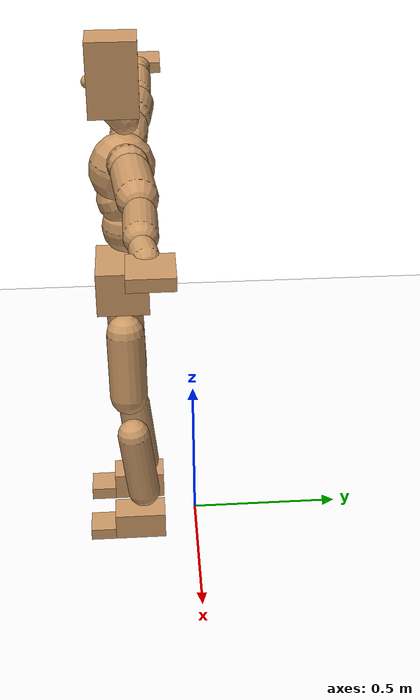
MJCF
<mujoco model="humanoid">
  <option integrator="implicitfast" />

  <visual>
    <global offwidth="1280" offheight="960" />
    <headlight active="1" ambient="0.34 0.34 0.34" diffuse="0.5 0.5 0.5" />
  </visual>

  <default>
    <joint damping="2" stiffness="2" armature="0.01" limited="true" solimplimit="0 .99 .01" />
    <geom condim="1" friction="0.7 0.005 0.0001" solimp=".99 .99 .003" solref="0.015 1" margin="0.001" rgba="0.8 0.6 .4 1" />
    <default class="smplcontact">
      <geom condim="3" friction="1. 0.005 0.0001" solref="0.015 1" solimp="0.98 0.98 0.001" priority="1" />
    </default>
    <default class="stiff_medium">
      <joint stiffness="10" />
    </default>
    <default class="stiff_medium_higher">
      <joint stiffness="50" />
    </default>
    <default class="stiff_high">
      <joint stiffness="100" />
    </default>
  </default>

  <asset>
    <texture type="skybox" builtin="gradient" rgb1="0.99 0.99 0.99" rgb2="0.608 0.828 0.892" width="100" />
    <texture builtin="flat" height="1278" mark="cross" markrgb="1 1 1" name="texgeom" random="0.01" rgb1="0.8 0.6 0.4" rgb2="0.8 0.6 0.4" type="cube" width="127" />
    <texture name="texplane" type="2d" builtin="checker" markrgb="1 1 1" rgb1="0.756 0.772 0.76" rgb2="0.6 0.6 0.6" width="100" height="100" />
    <material name="MatPlane" reflectance="0.5" texture="texplane" texrepeat="1 1" texuniform="true" />
    <material name="geom" texture="texgeom" texuniform="true" />
  </asset>

  <worldbody>
    <light name="tracking_light" pos="0 0 7" dir="0 0 -1" directional="true" cutoff="100" exponent="1" diffuse="1 1 1" specular="0.1 0.1 0.1" mode="trackcom" />
    <camera name="back" pos="0 3 2.4" xyaxes="-1 0 0 0 -1 2" mode="trackcom" />
    <camera name="side" pos="-3 0 2.4" xyaxes="0 -1 0 1 0 2" mode="trackcom" />
    <camera name="front_side" pos="-2.8 -2.8 0.8" xyaxes="0.5 -0.5 0 0.1 0.1 1" mode="trackcom" />
    <geom condim="3" name="floor" pos="0 0 0" rgba="1 1 1 1" size="100 100 .2" type="plane" material="MatPlane" />
    <body name="Pelvis" pos="-0.0018 -0.2233 0.9367" euler="90 0 0">
      <site name="Pelvis" size="0.01" />
      <freejoint name="Pelvis" />
      <geom type="box" pos="-0.0000 -0.0121 -0.0055" size="0.1069 0.0722 0.083" quat="1.0000 0.0000 0.0000 0.0000" density="3165.830099" name="Pelvis" />
      <body name="L_Hip" pos="0.0695 -0.0914 -0.0068">
        <joint name="L_Hip_x" type="hinge" pos="0 0 0" axis="1 0 0" stiffness="10.0" range="-160.0 22.92" class="stiff_medium" damping="15.0" armature="0.01"/>
        <joint name="L_Hip_y" type="hinge" pos="0 0 0" axis="0 1 0" stiffness="10.0" range="-70.0 70.0" class="stiff_medium" damping="10.000000000000002" armature="0.010000000000000005"/>
        <joint name="L_Hip_z" type="hinge" pos="0 0 0" axis="0 0 1" stiffness="10.0" range="-28.65 90.0" class="stiff_medium" damping="9.999999999999998" armature="0.009999999999999998"/>
        <geom type="capsule" density="2040.816327" fromto="0.0069 -0.075 -0.0009 0.0274 -0.3002 -0.0036" size="0.0615" name="L_Hip" />
        <body name="L_Knee" pos="0.0343 -0.3752 -0.0045">
          <joint name="L_Knee_x" type="hinge" pos="0 0 0" axis="1 0 0" range="-5.16 171.89" damping="8.000000000000005" armature="0.010000000000000014" stiffness="2.0"/>
          <joint name="L_Knee_y" type="hinge" pos="0 0 0" axis="0 1 0" range="-4.58 6.88" damping="8.000000000000002" armature="0.010000000000000007" stiffness="2.0"/>
          <joint name="L_Knee_z" type="hinge" pos="0 0 0" axis="0 0 1" range="-6.88 4.58" damping="8.000000000000002" armature="0.010000000000000005" stiffness="2.0"/>
          <geom type="capsule" density="1234.567901" fromto="-0.0027 -0.0796 -0.0087 -0.0109 -0.3184 -0.035" size="0.0541" name="L_Knee" />
          <body name="L_Ankle" pos="-0.0136 -0.398 -0.0437">
            <joint name="L_Ankle_x" type="hinge" pos="0 0 0" axis="1 0 0" range="-45.84 45.84" class="stiff_medium" damping="6.0000000000000675" armature="0.010000000000000227" stiffness="10.0"/>
            <joint name="L_Ankle_y" type="hinge" pos="0 0 0" axis="0 1 0" range="-74.48 22.92" class="stiff_medium" damping="3.000000000000001" armature="0.010000000000000005" stiffness="10.0"/>
            <joint name="L_Ankle_z" type="hinge" pos="0 0 0" axis="0 0 1" range="-4.58 4.58" class="stiff_medium" damping="6.000000000000014" armature="0.01000000000000005" stiffness="10.0"/>
            <geom type="box" pos="0.0233 -0.0239 0.0242" size="0.0483 0.0464 0.085" quat="1.0000 0.0000 0.0000 0.0000" density="449.071558" name="L_Ankle" class="smplcontact" />
            <body name="L_Toe" pos="0.0264 -0.0558 0.1193">
              <joint name="L_Toe_x" type="hinge" pos="0 0 0" axis="1 0 0" range="-91.67 22.92" armature="0.009999999999999572" damping="1.9999999999999571" stiffness="2.0"/>
              <joint name="L_Toe_y" type="hinge" pos="0 0 0" axis="0 1 0" range="-4.58 4.58" armature="0.009999999999999976" damping="1.9999999999999976" stiffness="2.0"/>
              <joint name="L_Toe_z" type="hinge" pos="0 0 0" axis="0 0 1" range="-4.58 4.58" armature="0.010000000000000082" damping="2.000000000000008" stiffness="2.0"/>
              <geom type="box" pos="-0.003 0.0055 0.0248" size="0.0478 0.02 0.0496" quat="1.0000 0.0000 0.0000 0.0000" density="423.206892" name="L_Toe" class="smplcontact" />
            </body>
          </body>
        </body>
      </body>
      <body name="R_Hip" pos="-0.0677 -0.0905 -0.0043">
        <joint name="R_Hip_x" type="hinge" pos="0 0 0" axis="1 0 0" stiffness="10.0" range="-160.0 22.92" class="stiff_medium" damping="15.0" armature="0.01"/>
        <joint name="R_Hip_y" type="hinge" pos="0 0 0" axis="0 1 0" stiffness="10.0" range="-70.0 70.0" class="stiff_medium" damping="10.000000000000002" armature="0.010000000000000005"/>
        <joint name="R_Hip_z" type="hinge" pos="0 0 0" axis="0 0 1" stiffness="10.0" range="-90.0 28.65" class="stiff_medium" damping="9.999999999999998" armature="0.009999999999999998"/>
        <geom type="capsule" density="2040.816327" fromto="-0.0077 -0.0765 -0.0018 -0.0306 -0.3061 -0.0071" size="0.0606" name="R_Hip" />
        <body name="R_Knee" pos="-0.0383 -0.3826 -0.0089">
          <joint name="R_Knee_x" type="hinge" pos="0 0 0" axis="1 0 0" range="-5.16 171.89" damping="8.000000000000005" armature="0.010000000000000014" stiffness="2.0"/>
          <joint name="R_Knee_y" type="hinge" pos="0 0 0" axis="0 1 0" range="-6.88 4.58" damping="8.000000000000002" armature="0.010000000000000007" stiffness="2.0"/>
          <joint name="R_Knee_z" type="hinge" pos="0 0 0" axis="0 0 1" range="-4.58 6.88" damping="8.000000000000002" armature="0.010000000000000005" stiffness="2.0"/>
          <geom type="capsule" density="1234.567901" fromto="0.0032 -0.0797 -0.0085 0.0126 -0.3187 -0.0338" size="0.0541" name="R_Knee" />
          <body name="R_Ankle" pos="0.0158 -0.3984 -0.0423">
            <joint name="R_Ankle_x" type="hinge" pos="0 0 0" axis="1 0 0" range="-45.84 45.84" class="stiff_medium" damping="6.0000000000000675" armature="0.010000000000000227" stiffness="10.0"/>
            <joint name="R_Ankle_y" type="hinge" pos="0 0 0" axis="0 1 0" range="-22.92 74.48" class="stiff_medium" damping="3.000000000000001" armature="0.010000000000000005" stiffness="10.0"/>
            <joint name="R_Ankle_z" type="hinge" pos="0 0 0" axis="0 0 1" range="-4.58 4.58" class="stiff_medium" damping="6.000000000000014" armature="0.01000000000000005" stiffness="10.0"/>
            <geom type="box" pos="-0.0212 -0.0174 0.0256" size="0.0483 0.0478 0.0865" quat="1.0000 0.0000 0.0000 0.0000" density="434.700981" name="R_Ankle" class="smplcontact" />
            <body name="R_Toe" pos="-0.0254 -0.0481 0.1233">
              <joint name="R_Toe_x" type="hinge" pos="0 0 0" axis="1 0 0" range="-91.67 22.92" armature="0.009999999999999572" damping="1.9999999999999571" stiffness="2.0"/>
              <joint name="R_Toe_y" type="hinge" pos="0 0 0" axis="0 1 0" range="-4.58 4.58" armature="0.009999999999999976" damping="1.9999999999999976" stiffness="2.0"/>
              <joint name="R_Toe_z" type="hinge" pos="0 0 0" axis="0 0 1" range="-4.58 4.58" armature="0.010000000000000082" damping="2.000000000000008" stiffness="2.0"/>
              <geom type="box" pos="0.0042 0.0045 0.0227" size="0.0479 0.0216 0.0493" quat="1.0000 0.0000 0.0000 0.0000" density="407.384095" name="R_Toe" class="smplcontact" />
            </body>
          </body>
        </body>
      </body>
      <body name="Torso" pos="-0.0025 0.109 -0.0267">
        <joint name="Torso_x" type="hinge" pos="0 0 0" axis="1 0 0" range="-25.78 57.3" class="stiff_medium" damping="16.918704039041636" armature="0.011220025814009714" stiffness="11.338557647058822"/>
        <joint name="Torso_y" type="hinge" pos="0 0 0" axis="0 1 0" range="-57.3 57.3" class="stiff_high" damping="25.001542979280682" armature="0.013906204245984238" stiffness="112.37379019607843"/>
        <joint name="Torso_z" type="hinge" pos="0 0 0" axis="0 0 1" range="-34.38 34.38" class="stiff_high" damping="23.21872561619191" armature="0.012141778296562586" stiffness="111.00293673469388"/>
        <geom type="capsule" density="2040.816327" fromto="0.0025 0.0608 0.0005 0.003 0.0743 0.0006" size="0.0769" name="Torso" />
        <body name="Spine" pos="0.0055 0.1352 0.0011">
          <joint name="Spine_x" type="hinge" pos="0 0 0" axis="1 0 0" stiffness="11.38448294117647" range="-25.78 57.3" class="stiff_medium" damping="16.8295050872469" armature="0.011057243167256807"/>
          <joint name="Spine_y" type="hinge" pos="0 0 0" axis="0 1 0" stiffness="11.541938541666667" range="-57.3 57.3" class="stiff_high" damping="10.145198047277118" armature="0.01393356755113559"/>
          <joint name="Spine_z" type="hinge" pos="0 0 0" axis="0 0 1" stiffness="22.88502862745098" range="-34.38 34.38" class="stiff_high" damping="14.437186807712456" armature="0.012649728241907878"/>
          <geom type="capsule" density="2040.816327" fromto="0.0007 0.0238 0.0114 0.0008 0.0291 0.014" size="0.0755" name="Spine" />
          <body name="Chest" pos="0.0015 0.0529 0.0254">
            <joint name="Chest_x" type="hinge" pos="0 0 0" axis="1 0 0" stiffness="11.36044612244898" range="-25.78 57.3" class="stiff_medium" damping="16.749028813014803" armature="0.010974919789651356"/>
            <joint name="Chest_y" type="hinge" pos="0 0 0" axis="0 1 0" stiffness="12.427967021276595" range="-57.3 57.3" class="stiff_high" damping="10.534971084123" armature="0.013953611584423504"/>
            <joint name="Chest_z" type="hinge" pos="0 0 0" axis="0 0 1" stiffness="22.5646864" range="-34.38 34.38" class="stiff_high" damping="14.472045623287599" armature="0.012891339542793397"/>
            <geom type="capsule" density="2040.816327" fromto="-0.0009 0.0682 -0.0173 -0.001 0.0833 -0.0212" size="0.1002" name="Chest" />
            <body name="Neck" pos="-0.0028 0.2139 -0.0429">
              <joint name="Neck_x" type="hinge" pos="0 0 0" axis="1 0 0" range="-28.65 57.3" class="stiff_medium_higher" damping="9.999999999999993" armature="0.009999999999999988" stiffness="50.0"/>
              <joint name="Neck_y" type="hinge" pos="0 0 0" axis="0 1 0" range="-40.11 40.11" class="stiff_medium_higher" damping="10.0" armature="0.01" stiffness="50.0"/>
              <joint name="Neck_z" type="hinge" pos="0 0 0" axis="0 0 1" range="-40.11 40.11" class="stiff_medium_higher" damping="9.99999999999999" armature="0.00999999999999998" stiffness="50.0"/>
              <geom type="capsule" density="1000" fromto="0.001 0.013 0.0103 0.0041 0.052 0.0411" size="0.0436" name="Neck" />
              <body name="Head" pos="0.0052 0.065 0.0513">
                <joint name="Head_x" type="hinge" pos="0 0 0" axis="1 0 0" range="-28.65 57.3" class="stiff_medium_higher" damping="1.9999999999999973" armature="0.009999999999999974" stiffness="50.0"/>
                <joint name="Head_y" type="hinge" pos="0 0 0" axis="0 1 0" range="-40.11 40.11" class="stiff_medium_higher" damping="2.0" armature="0.01" stiffness="50.0"/>
                <joint name="Head_z" type="hinge" pos="0 0 0" axis="0 0 1" range="-40.11 40.11" class="stiff_medium_higher" damping="1.9999999999999958" armature="0.009999999999999959" stiffness="50.0"/>
                <geom type="box" pos="-0.0042 0.0876 -0.0116" size="0.0606 0.1154 0.076" quat="1.0000 0.0000 0.0000 0.0000" density="1018.069894" name="Head" />
                <geom type="capsule" name="nose" size="0.02 0.01" pos="0 0.07 0.05" quat="1 0 0 0" mass="0" contype="0" conaffinity="0" />
              </body>
            </body>
            <body name="L_Thorax" pos="0.0788 0.1217 -0.0341">
              <joint name="L_Thorax_x" type="hinge" pos="0 0 0" axis="1 0 0" range="-10.89 4.58" class="stiff_medium_higher" damping="29.97991480547008" armature="0.016054393503328643" stiffness="69.98047696078432"/>
              <joint name="L_Thorax_y" type="hinge" pos="0 0 0" axis="0 1 0" range="-28.65 17.19" class="stiff_medium_higher" damping="28.08530653998637" armature="0.014136436655162435" stiffness="69.74746029411764"/>
              <joint name="L_Thorax_z" type="hinge" pos="0 0 0" axis="0 0 1" range="-31.51 40.11" class="stiff_medium_higher" damping="28.084008069284508" armature="0.014134702675016098" stiffness="69.74956666666667"/>
              <geom type="capsule" density="1000" fromto="0.0182 0.0061 -0.0018 0.0728 0.0244 -0.0071" size="0.059915" name="L_Thorax" />
              <body name="L_Shoulder" pos="0.091 0.0305 -0.0089">
                <joint name="L_Shoulder_x" type="hinge" pos="0 0 0" axis="1 0 0" range="-97.4 97.4" class="stiff_medium" damping="9.210008369724417" armature="0.01679105061994713" stiffness="14.032649509803921"/>
                <joint name="L_Shoulder_y" type="hinge" pos="0 0 0" axis="0 1 0" range="-108.86 80.21" class="stiff_medium" damping="8.4492771525749" armature="0.01419846021203177" stiffness="13.966750098039217"/>
                <joint name="L_Shoulder_z" type="hinge" pos="0 0 0" axis="0 0 1" range="-97.4 85.94" class="stiff_medium" damping="8.450115130264434" armature="0.014196152907488813" stiffness="13.971791078431375"/>
                <geom type="capsule" density="1000" fromto="0.0519 -0.0026 -0.0055 0.2077 -0.0102 -0.022" size="0.059455" name="L_Shoulder" />
                <body name="L_Elbow" pos="0.2596 -0.0128 -0.0275">
                  <joint name="L_Elbow_x" type="hinge" pos="0 0 0" axis="1 0 0" range="-17.19 4.58" damping="7.9867180576330865" armature="0.01799857599594549" stiffness="2.8352316470588237"/>
                  <joint name="L_Elbow_y" type="hinge" pos="0 0 0" axis="0 1 0" range="-180.0 17.19" damping="7.168991872673123" armature="0.014501997240956653" stiffness="2.8351650392156857"/>
                  <joint name="L_Elbow_z" type="hinge" pos="0 0 0" axis="0 0 1" range="-100.84 4.58" damping="7.167513914015408" armature="0.014489886170031241" stiffness="2.836364901960784"/>
                  <geom type="capsule" density="1000" fromto="0.0498 0.0018 -0.0002 0.1994 0.0072 -0.0009" size="0.046575" name="L_Elbow" />
                  <body name="L_Wrist" pos="0.2492 0.009 -0.0012">
                    <joint name="L_Wrist_x" type="hinge" pos="0 0 0" axis="1 0 0" range="-180.0 22.92" armature="0.018419858763457215" damping="3.3075817613718472" stiffness="2.9696473921568627"/>
                    <joint name="L_Wrist_y" type="hinge" pos="0 0 0" axis="0 1 0" range="-17.19 17.19" armature="0.015590513798185948" damping="3.037909171310303" stiffness="2.959778058823529"/>
                    <joint name="L_Wrist_z" type="hinge" pos="0 0 0" axis="0 0 1" range="-22.92 22.92" armature="0.015431004088271126" damping="3.0240487044869373" stiffness="2.963148254901961"/>
                    <geom type="capsule" density="1000" fromto="0.0168 -0.0016 -0.003 0.0672 -0.0065 -0.012" size="0.03657" name="L_Wrist" class="smplcontact" />
                    <body name="L_Hand" pos="0.084 -0.0082 -0.0149">
                      <joint name="L_Hand_x" type="hinge" pos="0 0 0" axis="1 0 0" range="-17.19 17.19" armature="0.01989988761786858" damping="3.479381645110285" stiffness="3.0417500000000004"/>
                      <joint name="L_Hand_y" type="hinge" pos="0 0 0" axis="0 1 0" range="-51.57 51.57" armature="0.017529355594106115" damping="3.265575519824102" stiffness="3.0417500000000004"/>
                      <joint name="L_Hand_z" type="hinge" pos="0 0 0" axis="0 0 1" range="-91.67 91.67" armature="0.016897457894400218" damping="3.206176618662542" stiffness="3.0417500000000004"/>
                      <geom type="box" pos="0.0493 0.001 -0.0058" size="0.067275 0.01817 0.06187" quat="1.0000 0.0000 0.0000 0.0000" density="400.552564" name="L_Hand" class="smplcontact" />
                    </body>
                  </body>
                </body>
              </body>
            </body>
            <body name="R_Thorax" pos="-0.0818 0.1188 -0.0386">
              <joint name="R_Thorax_x" type="hinge" pos="0 0 0" axis="1 0 0" range="-10.89 4.58" class="stiff_medium_higher" damping="29.97991480547008" armature="0.016054393503328643" stiffness="69.98047696078432"/>
              <joint name="R_Thorax_y" type="hinge" pos="0 0 0" axis="0 1 0" range="-17.19 28.65" class="stiff_medium_higher" damping="28.08530653998637" armature="0.014136436655162435" stiffness="69.74746029411764"/>
              <joint name="R_Thorax_z" type="hinge" pos="0 0 0" axis="0 0 1" range="-40.11 31.51" class="stiff_medium_higher" damping="28.084008069284508" armature="0.014134702675016098" stiffness="69.74956666666667"/>
              <geom type="capsule" density="1000" fromto="-0.0192 0.0065 -0.0018 -0.0768 0.026 -0.0073" size="0.058765" name="R_Thorax" />
              <body name="R_Shoulder" pos="-0.096 0.0326 -0.0091">
                <joint name="R_Shoulder_x" type="hinge" pos="0 0 0" axis="1 0 0" range="-97.4 97.4" class="stiff_medium" damping="9.210008369724417" armature="0.01679105061994713" stiffness="14.032649509803921"/>
                <joint name="R_Shoulder_y" type="hinge" pos="0 0 0" axis="0 1 0" range="-80.21 108.86" class="stiff_medium" damping="8.4492771525749" armature="0.01419846021203177" stiffness="13.966750098039217"/>
                <joint name="R_Shoulder_z" type="hinge" pos="0 0 0" axis="0 0 1" range="-85.94 97.4" class="stiff_medium" damping="8.450115130264434" armature="0.014196152907488813" stiffness="13.971791078431375"/>
                <geom type="capsule" density="1000" fromto="-0.0507 -0.0027 -0.0043 -0.203 -0.0107 -0.0171" size="0.061065" name="R_Shoulder" />
                <body name="R_Elbow" pos="-0.2537 -0.0133 -0.0214">
                  <joint name="R_Elbow_x" type="hinge" pos="0 0 0" axis="1 0 0" range="-17.19 4.58" damping="7.9867180576330865" armature="0.01799857599594549" stiffness="2.8352316470588237"/>
                  <joint name="R_Elbow_y" type="hinge" pos="0 0 0" axis="0 1 0" range="-17.19 180.0" damping="7.168991872673123" armature="0.014501997240956653" stiffness="2.8351650392156857"/>
                  <joint name="R_Elbow_z" type="hinge" pos="0 0 0" axis="0 0 1" range="-4.58 100.84" damping="7.167513914015408" armature="0.014489886170031241" stiffness="2.836364901960784"/>
                  <geom type="capsule" density="1000" fromto="-0.0511 0.0016 -0.0011 -0.2042 0.0062 -0.0044" size="0.04692" name="R_Elbow" />
                  <body name="R_Wrist" pos="-0.2553 0.0078 -0.0056">
                    <joint name="R_Wrist_x" type="hinge" pos="0 0 0" axis="1 0 0" range="-180.0 22.92" armature="0.018419858763457215" damping="3.3075817613718472" stiffness="2.9696473921568627"/>
                    <joint name="R_Wrist_y" type="hinge" pos="0 0 0" axis="0 1 0" range="-17.19 17.19" armature="0.015590513798185948" damping="3.037909171310303" stiffness="2.959778058823529"/>
                    <joint name="R_Wrist_z" type="hinge" pos="0 0 0" axis="0 0 1" range="-22.92 22.92" armature="0.015431004088271126" damping="3.0240487044869373" stiffness="2.963148254901961"/>
                    <geom type="capsule" density="1000" fromto="-0.0169 -0.0012 -0.0021 -0.0677 -0.0049 -0.0083" size="0.03749" name="R_Wrist" class="smplcontact" />
                    <body name="R_Hand" pos="-0.0846 -0.0061 -0.0103">
                      <joint name="R_Hand_x" type="hinge" pos="0 0 0" axis="1 0 0" range="-17.19 17.19" armature="0.01989988761786858" damping="3.479381645110285" stiffness="3.0417500000000004"/>
                      <joint name="R_Hand_y" type="hinge" pos="0 0 0" axis="0 1 0" range="-51.57 51.57" armature="0.017529355594106115" damping="3.265575519824102" stiffness="3.0417500000000004"/>
                      <joint name="R_Hand_z" type="hinge" pos="0 0 0" axis="0 0 1" range="-91.67 91.67" armature="0.016897457894400218" damping="3.206176618662542" stiffness="3.0417500000000004"/>
                      <geom type="box" pos="-0.0462 -0.0009 -0.0079" size="0.065435 0.01886 0.06279" quat="1.0000 0.0000 0.0000 0.0000" density="403.679611" name="R_Hand" class="smplcontact" />
                    </body>
                  </body>
                </body>
              </body>
            </body>
          </body>
        </body>
      </body>
    </body>
  </worldbody>
  <actuator>
    <general name="L_Hip_x" joint="L_Hip_x" biastype="affine" gainprm="287.33006409732246" biasprm="-215.3247604770444 -180.0 -2.0" ctrllimited="true" ctrlrange="-1 1" forcerange="-360.0 360.0" />
    <general name="L_Hip_y" joint="L_Hip_y" biastype="affine" gainprm="219.9114857512855" biasprm="0.0 -180.0 -2.0000000000000004" ctrllimited="true" ctrlrange="-1 1" forcerange="-360.0 360.0" />
    <general name="L_Hip_z" joint="L_Hip_z" biastype="affine" gainprm="186.3749841742145" biasprm="96.3683546488669 -180.0 -1.9999999999999998" ctrllimited="true" ctrlrange="-1 1" forcerange="-360.0 360.0" />
    <general name="L_Knee_x" joint="L_Knee_x" biastype="affine" gainprm="278.10948965903646" biasprm="261.8988715665131 -180.0 -2.0000000000000013" ctrllimited="true" ctrlrange="-1 1" forcerange="-360.0 360.0" />
    <general name="L_Knee_y" joint="L_Knee_y" biastype="affine" gainprm="18.001325905069514" biasprm="3.612831551628262 -180.0 -2.0000000000000004" ctrllimited="true" ctrlrange="-1 1" forcerange="-360.0 360.0" />
    <general name="L_Knee_z" joint="L_Knee_z" biastype="affine" gainprm="18.001325905069514" biasprm="-3.612831551628262 -180.0 -2.0000000000000004" ctrllimited="true" ctrlrange="-1 1" forcerange="-360.0 360.0" />
    <general name="L_Ankle_x" joint="L_Ankle_x" biastype="affine" gainprm="72.00530362027807" biasprm="0.0 -90.0 -2.0000000000000226" ctrllimited="true" ctrlrange="-1 1" forcerange="-180.0 180.0" />
    <general name="L_Ankle_y" joint="L_Ankle_y" biastype="affine" gainprm="76.49778111491148" biasprm="-40.49512930477244 -90.0 -2.0000000000000004" ctrllimited="true" ctrlrange="-1 1" forcerange="-180.0 180.0" />
    <general name="L_Ankle_z" joint="L_Ankle_z" biastype="affine" gainprm="7.1942471767206255" biasprm="0.0 -90.0 -2.000000000000005" ctrllimited="true" ctrlrange="-1 1" forcerange="-180.0 180.0" />
    <general name="L_Toe_x" joint="L_Toe_x" biastype="affine" gainprm="71.99902043497087" biasprm="-43.19689898685965 -72.0 -0.799999999999983" ctrllimited="true" ctrlrange="-1 1" forcerange="-144.0 144.0" />
    <general name="L_Toe_y" joint="L_Toe_y" biastype="affine" gainprm="5.755397741376501" biasprm="0.0 -72.0 -0.799999999999999" ctrllimited="true" ctrlrange="-1 1" forcerange="-144.0 144.0" />
    <general name="L_Toe_z" joint="L_Toe_z" biastype="affine" gainprm="5.755397741376501" biasprm="0.0 -72.0 -0.8000000000000033" ctrllimited="true" ctrlrange="-1 1" forcerange="-144.0 144.0" />
    <general name="R_Hip_x" joint="R_Hip_x" biastype="affine" gainprm="287.33006409732246" biasprm="-215.3247604770444 -180.0 -2.0" ctrllimited="true" ctrlrange="-1 1" forcerange="-360.0 360.0" />
    <general name="R_Hip_y" joint="R_Hip_y" biastype="affine" gainprm="219.9114857512855" biasprm="0.0 -180.0 -2.0000000000000004" ctrllimited="true" ctrlrange="-1 1" forcerange="-360.0 360.0" />
    <general name="R_Hip_z" joint="R_Hip_z" biastype="affine" gainprm="186.3749841742145" biasprm="-96.3683546488669 -180.0 -1.9999999999999998" ctrllimited="true" ctrlrange="-1 1" forcerange="-360.0 360.0" />
    <general name="R_Knee_x" joint="R_Knee_x" biastype="affine" gainprm="278.10948965903646" biasprm="261.8988715665131 -180.0 -2.0000000000000013" ctrllimited="true" ctrlrange="-1 1" forcerange="-360.0 360.0" />
    <general name="R_Knee_y" joint="R_Knee_y" biastype="affine" gainprm="18.001325905069514" biasprm="-3.612831551628262 -180.0 -2.0000000000000004" ctrllimited="true" ctrlrange="-1 1" forcerange="-360.0 360.0" />
    <general name="R_Knee_z" joint="R_Knee_z" biastype="affine" gainprm="18.001325905069514" biasprm="3.612831551628262 -180.0 -2.0000000000000004" ctrllimited="true" ctrlrange="-1 1" forcerange="-360.0 360.0" />
    <general name="R_Ankle_x" joint="R_Ankle_x" biastype="affine" gainprm="72.00530362027807" biasprm="0.0 -90.0 -2.0000000000000226" ctrllimited="true" ctrlrange="-1 1" forcerange="-180.0 180.0" />
    <general name="R_Ankle_y" joint="R_Ankle_y" biastype="affine" gainprm="76.49778111491148" biasprm="40.49512930477244 -90.0 -2.0000000000000004" ctrllimited="true" ctrlrange="-1 1" forcerange="-180.0 180.0" />
    <general name="R_Ankle_z" joint="R_Ankle_z" biastype="affine" gainprm="7.1942471767206255" biasprm="0.0 -90.0 -2.000000000000005" ctrllimited="true" ctrlrange="-1 1" forcerange="-180.0 180.0" />
    <general name="R_Toe_x" joint="R_Toe_x" biastype="affine" gainprm="71.99902043497087" biasprm="-43.19689898685965 -72.0 -0.799999999999983" ctrllimited="true" ctrlrange="-1 1" forcerange="-144.0 144.0" />
    <general name="R_Toe_y" joint="R_Toe_y" biastype="affine" gainprm="5.755397741376501" biasprm="0.0 -72.0 -0.799999999999999" ctrllimited="true" ctrlrange="-1 1" forcerange="-144.0 144.0" />
    <general name="R_Toe_z" joint="R_Toe_z" biastype="affine" gainprm="5.755397741376501" biasprm="0.0 -72.0 -0.8000000000000033" ctrllimited="true" ctrlrange="-1 1" forcerange="-144.0 144.0" />
    <general name="Torso_x" joint="Torso_x" biastype="affine" gainprm="197.2935620717178" biasprm="74.85186659244756 -272.12538352941175 -4.5116544104111025" ctrllimited="true" ctrlrange="-1 1" forcerange="-408.1880752941176 408.1880752941176" />
    <general name="Torso_y" joint="Torso_y" biastype="affine" gainprm="269.7169627343351" biasprm="0.0 -269.69709647058824 -5.000308595856136" ctrllimited="true" ctrlrange="-1 1" forcerange="-404.54564470588235 404.54564470588235" />
    <general name="Torso_z" joint="Torso_z" biastype="affine" gainprm="159.85600324648303" biasprm="0.0 -266.4070481632653 -4.643745123238382" ctrllimited="true" ctrlrange="-1 1" forcerange="-399.610572244898 399.610572244898" />
    <general name="Spine_x" joint="Spine_x" biastype="affine" gainprm="198.09267295933694" biasprm="75.15504395375902 -273.2275905882353 -4.48786802326584" ctrllimited="true" ctrlrange="-1 1" forcerange="-409.84138588235294 409.84138588235294" />
    <general name="Spine_y" joint="Spine_y" biastype="affine" gainprm="277.0269296864326" biasprm="0.0 -277.006525 -5.072599023638559" ctrllimited="true" ctrlrange="-1 1" forcerange="-415.5097875 415.5097875" />
    <general name="Spine_z" joint="Spine_z" biastype="affine" gainprm="164.78434346783632" biasprm="0.0 -274.62034352941174 -4.8123956025708186" ctrllimited="true" ctrlrange="-1 1" forcerange="-411.93051529411764 411.93051529411764" />
    <general name="Chest_x" joint="Chest_x" biastype="affine" gainprm="197.67442667658784" biasprm="74.99636409299526 -272.6507069387755 -4.466407683470614" ctrllimited="true" ctrlrange="-1 1" forcerange="-408.9760604081633 408.9760604081633" />
    <general name="Chest_y" joint="Chest_y" biastype="affine" gainprm="298.29317958327465" biasprm="0.0 -298.2712085106383 -5.2674855420615" ctrllimited="true" ctrlrange="-1 1" forcerange="-447.40681276595745 447.40681276595745" />
    <general name="Chest_z" joint="Chest_z" biastype="affine" gainprm="162.47770953283595" biasprm="0.0 -270.7762368 -4.824015207762533" ctrllimited="true" ctrlrange="-1 1" forcerange="-406.1643552 406.1643552" />
    <general name="Neck_x" joint="Neck_x" biastype="affine" gainprm="27.00198885760427" biasprm="9.000662952534757 -36.0 -0.7999999999999995" ctrllimited="true" ctrlrange="-1 1" forcerange="-72.0 72.0" />
    <general name="Neck_y" joint="Neck_y" biastype="affine" gainprm="25.20185626709732" biasprm="0.0 -36.0 -0.8" ctrllimited="true" ctrlrange="-1 1" forcerange="-72.0 72.0" />
    <general name="Neck_z" joint="Neck_z" biastype="affine" gainprm="25.20185626709732" biasprm="0.0 -36.0 -0.7999999999999993" ctrllimited="true" ctrlrange="-1 1" forcerange="-72.0 72.0" />
    <general name="Head_x" joint="Head_x" biastype="affine" gainprm="18.001325905069514" biasprm="6.000441968356505 -24.0 -0.7999999999999989" ctrllimited="true" ctrlrange="-1 1" forcerange="-48.0 48.0" />
    <general name="Head_y" joint="Head_y" biastype="affine" gainprm="16.801237511398213" biasprm="0.0 -24.0 -0.8" ctrllimited="true" ctrlrange="-1 1" forcerange="-48.0 48.0" />
    <general name="Head_z" joint="Head_z" biastype="affine" gainprm="16.801237511398213" biasprm="0.0 -24.0 -0.7999999999999984" ctrllimited="true" ctrlrange="-1 1" forcerange="-48.0 48.0" />
    <general name="L_Thorax_x" joint="L_Thorax_x" biastype="affine" gainprm="22.673879042057063" biasprm="-9.248363074038794 -167.95314470588235 -2.3983931844376065" ctrllimited="true" ctrlrange="-1 1" forcerange="-335.9062894117647 335.9062894117647" />
    <general name="L_Thorax_y" joint="L_Thorax_y" biastype="affine" gainprm="66.9624940696164" biasprm="-16.7406235174041 -167.39390470588236 -2.2468245231989097" ctrllimited="true" ctrlrange="-1 1" forcerange="-334.7878094117647 334.7878094117647" />
    <general name="L_Thorax_z" joint="L_Thorax_z" biastype="affine" gainprm="104.62475261779561" biasprm="12.563150970581432 -167.39896 -2.246720645542761" ctrllimited="true" ctrlrange="-1 1" forcerange="-334.79792 334.79792" />
    <general name="L_Shoulder_x" joint="L_Shoulder_x" biastype="affine" gainprm="114.50309873741334" biasprm="0.0 -67.35671764705882 -2.4560022319265116" ctrllimited="true" ctrlrange="-1 1" forcerange="-134.71343529411763 134.71343529411763" />
    <general name="L_Shoulder_y" joint="L_Shoulder_y" biastype="affine" gainprm="110.61310819656417" biasprm="-16.761334689964368 -67.04040047058825 -2.253140574019974" ctrllimited="true" ctrlrange="-1 1" forcerange="-134.0808009411765 134.0808009411765" />
    <general name="L_Shoulder_z" joint="L_Shoulder_z" biastype="affine" gainprm="107.29955461664208" biasprm="-6.706953724810304 -67.0645971764706 -2.253364034737183" ctrllimited="true" ctrlrange="-1 1" forcerange="-134.1291943529412 134.1291943529412" />
    <general name="L_Elbow_x" joint="L_Elbow_x" biastype="affine" gainprm="19.390850122962256" biasprm="-11.231907214081494 -102.06833929411765 -1.2778748892212939" ctrllimited="true" ctrlrange="-1 1" forcerange="-204.1366785882353 204.1366785882353" />
    <general name="L_Elbow_y" joint="L_Elbow_y" biastype="affine" gainprm="175.63582482013732" biasprm="-145.0137869007889 -102.06594141176468 -1.1470386996276998" ctrllimited="true" ctrlrange="-1 1" forcerange="-204.13188282352937 204.13188282352937" />
    <general name="L_Elbow_z" joint="L_Elbow_z" biastype="affine" gainprm="93.93663249028309" biasprm="-85.77442841505076 -102.10913647058823 -1.1468022262424653" ctrllimited="true" ctrlrange="-1 1" forcerange="-204.21827294117645 204.21827294117645" />
    <general name="L_Wrist_x" joint="L_Wrist_x" biastype="affine" gainprm="31.552106661479957" biasprm="-24.424427924232564 -17.817884352941178 -1.323032704548739" ctrllimited="true" ctrlrange="-1 1" forcerange="-35.635768705882356 35.635768705882356" />
    <general name="L_Wrist_y" joint="L_Wrist_y" biastype="affine" gainprm="5.327992944355637" biasprm="0.0 -17.758668352941175 -1.2151636685241212" ctrllimited="true" ctrlrange="-1 1" forcerange="-35.51733670588235 35.51733670588235" />
    <general name="L_Wrist_z" joint="L_Wrist_z" biastype="affine" gainprm="7.112079658870428" biasprm="0.0 -17.778889529411767 -1.209619481794775" ctrllimited="true" ctrlrange="-1 1" forcerange="-35.557779058823535 35.557779058823535" />
    <general name="L_Hand_x" joint="L_Hand_x" biastype="affine" gainprm="5.475553307174522" biasprm="0.0 -18.250500000000002 -1.391752658044114" ctrllimited="true" ctrlrange="-1 1" forcerange="-36.501000000000005 36.501000000000005" />
    <general name="L_Hand_y" joint="L_Hand_y" biastype="affine" gainprm="16.42665992152356" biasprm="0.0 -18.250500000000002 -1.3062302079296408" ctrllimited="true" ctrlrange="-1 1" forcerange="-36.501000000000005 36.501000000000005" />
    <general name="L_Hand_z" joint="L_Hand_z" biastype="affine" gainprm="29.19976565844609" biasprm="0.0 -18.250500000000002 -1.282470647465017" ctrllimited="true" ctrlrange="-1 1" forcerange="-36.501000000000005 36.501000000000005" />
    <general name="R_Thorax_x" joint="R_Thorax_x" biastype="affine" gainprm="22.673879042057063" biasprm="-9.248363074038794 -167.95314470588235 -2.3983931844376065" ctrllimited="true" ctrlrange="-1 1" forcerange="-335.9062894117647 335.9062894117647" />
    <general name="R_Thorax_y" joint="R_Thorax_y" biastype="affine" gainprm="66.9624940696164" biasprm="16.74062351740409 -167.39390470588236 -2.2468245231989097" ctrllimited="true" ctrlrange="-1 1" forcerange="-334.7878094117647 334.7878094117647" />
    <general name="R_Thorax_z" joint="R_Thorax_z" biastype="affine" gainprm="104.62475261779561" biasprm="-12.563150970581432 -167.39896 -2.246720645542761" ctrllimited="true" ctrlrange="-1 1" forcerange="-334.79792 334.79792" />
    <general name="R_Shoulder_x" joint="R_Shoulder_x" biastype="affine" gainprm="114.50309873741334" biasprm="0.0 -67.35671764705882 -2.4560022319265116" ctrllimited="true" ctrlrange="-1 1" forcerange="-134.71343529411763 134.71343529411763" />
    <general name="R_Shoulder_y" joint="R_Shoulder_y" biastype="affine" gainprm="110.61310819656417" biasprm="16.761334689964368 -67.04040047058825 -2.253140574019974" ctrllimited="true" ctrlrange="-1 1" forcerange="-134.0808009411765 134.0808009411765" />
    <general name="R_Shoulder_z" joint="R_Shoulder_z" biastype="affine" gainprm="107.29955461664208" biasprm="6.706953724810289 -67.0645971764706 -2.253364034737183" ctrllimited="true" ctrlrange="-1 1" forcerange="-134.1291943529412 134.1291943529412" />
    <general name="R_Elbow_x" joint="R_Elbow_x" biastype="affine" gainprm="19.390850122962256" biasprm="-11.231907214081494 -102.06833929411765 -1.2778748892212939" ctrllimited="true" ctrlrange="-1 1" forcerange="-204.1366785882353 204.1366785882353" />
    <general name="R_Elbow_y" joint="R_Elbow_y" biastype="affine" gainprm="175.63582482013732" biasprm="145.0137869007889 -102.06594141176468 -1.1470386996276998" ctrllimited="true" ctrlrange="-1 1" forcerange="-204.13188282352937 204.13188282352937" />
    <general name="R_Elbow_z" joint="R_Elbow_z" biastype="affine" gainprm="93.93663249028309" biasprm="85.77442841505075 -102.10913647058823 -1.1468022262424653" ctrllimited="true" ctrlrange="-1 1" forcerange="-204.21827294117645 204.21827294117645" />
    <general name="R_Wrist_x" joint="R_Wrist_x" biastype="affine" gainprm="31.552106661479957" biasprm="-24.424427924232564 -17.817884352941178 -1.323032704548739" ctrllimited="true" ctrlrange="-1 1" forcerange="-35.635768705882356 35.635768705882356" />
    <general name="R_Wrist_y" joint="R_Wrist_y" biastype="affine" gainprm="5.327992944355637" biasprm="0.0 -17.758668352941175 -1.2151636685241212" ctrllimited="true" ctrlrange="-1 1" forcerange="-35.51733670588235 35.51733670588235" />
    <general name="R_Wrist_z" joint="R_Wrist_z" biastype="affine" gainprm="7.112079658870428" biasprm="0.0 -17.778889529411767 -1.209619481794775" ctrllimited="true" ctrlrange="-1 1" forcerange="-35.557779058823535 35.557779058823535" />
    <general name="R_Hand_x" joint="R_Hand_x" biastype="affine" gainprm="5.475553307174522" biasprm="0.0 -18.250500000000002 -1.391752658044114" ctrllimited="true" ctrlrange="-1 1" forcerange="-36.501000000000005 36.501000000000005" />
    <general name="R_Hand_y" joint="R_Hand_y" biastype="affine" gainprm="16.42665992152356" biasprm="0.0 -18.250500000000002 -1.3062302079296408" ctrllimited="true" ctrlrange="-1 1" forcerange="-36.501000000000005 36.501000000000005" />
    <general name="R_Hand_z" joint="R_Hand_z" biastype="affine" gainprm="29.19976565844609" biasprm="0.0 -18.250500000000002 -1.282470647465017" ctrllimited="true" ctrlrange="-1 1" forcerange="-36.501000000000005 36.501000000000005" />
  </actuator>
  <contact>
    <exclude body1="Torso" body2="Chest" />
    <exclude body1="Head" body2="Chest" />
    <exclude body1="R_Knee" body2="R_Toe" />
    <exclude body1="R_Knee" body2="L_Ankle" />
    <exclude body1="R_Knee" body2="L_Toe" />
    <exclude body1="L_Knee" body2="L_Toe" />
    <exclude body1="L_Knee" body2="R_Ankle" />
    <exclude body1="L_Knee" body2="R_Toe" />
    <exclude body1="L_Shoulder" body2="Chest" />
    <exclude body1="R_Shoulder" body2="Chest" />
  </contact>
  <sensor>
    <framelinvel name="sensor_Pelvis_framelinvel" objtype="xbody" objname="Pelvis" />
    <framelinvel name="sensor_L_Hip_framelinvel" objtype="xbody" objname="L_Hip" />
    <framelinvel name="sensor_L_Knee_framelinvel" objtype="xbody" objname="L_Knee" />
    <framelinvel name="sensor_L_Ankle_framelinvel" objtype="xbody" objname="L_Ankle" />
    <framelinvel name="sensor_L_Toe_framelinvel" objtype="xbody" objname="L_Toe" />
    <framelinvel name="sensor_R_Hip_framelinvel" objtype="xbody" objname="R_Hip" />
    <framelinvel name="sensor_R_Knee_framelinvel" objtype="xbody" objname="R_Knee" />
    <framelinvel name="sensor_R_Ankle_framelinvel" objtype="xbody" objname="R_Ankle" />
    <framelinvel name="sensor_R_Toe_framelinvel" objtype="xbody" objname="R_Toe" />
    <framelinvel name="sensor_Torso_framelinvel" objtype="xbody" objname="Torso" />
    <framelinvel name="sensor_Spine_framelinvel" objtype="xbody" objname="Spine" />
    <framelinvel name="sensor_Chest_framelinvel" objtype="xbody" objname="Chest" />
    <framelinvel name="sensor_Neck_framelinvel" objtype="xbody" objname="Neck" />
    <framelinvel name="sensor_Head_framelinvel" objtype="xbody" objname="Head" />
    <framelinvel name="sensor_L_Thorax_framelinvel" objtype="xbody" objname="L_Thorax" />
    <framelinvel name="sensor_L_Shoulder_framelinvel" objtype="xbody" objname="L_Shoulder" />
    <framelinvel name="sensor_L_Elbow_framelinvel" objtype="xbody" objname="L_Elbow" />
    <framelinvel name="sensor_L_Wrist_framelinvel" objtype="xbody" objname="L_Wrist" />
    <framelinvel name="sensor_L_Hand_framelinvel" objtype="xbody" objname="L_Hand" />
    <framelinvel name="sensor_R_Thorax_framelinvel" objtype="xbody" objname="R_Thorax" />
    <framelinvel name="sensor_R_Shoulder_framelinvel" objtype="xbody" objname="R_Shoulder" />
    <framelinvel name="sensor_R_Elbow_framelinvel" objtype="xbody" objname="R_Elbow" />
    <framelinvel name="sensor_R_Wrist_framelinvel" objtype="xbody" objname="R_Wrist" />
    <framelinvel name="sensor_R_Hand_framelinvel" objtype="xbody" objname="R_Hand" />
    <frameangvel name="sensor_Pelvis_frameangvel" objtype="xbody" objname="Pelvis" />
    <frameangvel name="sensor_L_Hip_frameangvel" objtype="xbody" objname="L_Hip" />
    <frameangvel name="sensor_L_Knee_frameangvel" objtype="xbody" objname="L_Knee" />
    <frameangvel name="sensor_L_Ankle_frameangvel" objtype="xbody" objname="L_Ankle" />
    <frameangvel name="sensor_L_Toe_frameangvel" objtype="xbody" objname="L_Toe" />
    <frameangvel name="sensor_R_Hip_frameangvel" objtype="xbody" objname="R_Hip" />
    <frameangvel name="sensor_R_Knee_frameangvel" objtype="xbody" objname="R_Knee" />
    <frameangvel name="sensor_R_Ankle_frameangvel" objtype="xbody" objname="R_Ankle" />
    <frameangvel name="sensor_R_Toe_frameangvel" objtype="xbody" objname="R_Toe" />
    <frameangvel name="sensor_Torso_frameangvel" objtype="xbody" objname="Torso" />
    <frameangvel name="sensor_Spine_frameangvel" objtype="xbody" objname="Spine" />
    <frameangvel name="sensor_Chest_frameangvel" objtype="xbody" objname="Chest" />
    <frameangvel name="sensor_Neck_frameangvel" objtype="xbody" objname="Neck" />
    <frameangvel name="sensor_Head_frameangvel" objtype="xbody" objname="Head" />
    <frameangvel name="sensor_L_Thorax_frameangvel" objtype="xbody" objname="L_Thorax" />
    <frameangvel name="sensor_L_Shoulder_frameangvel" objtype="xbody" objname="L_Shoulder" />
    <frameangvel name="sensor_L_Elbow_frameangvel" objtype="xbody" objname="L_Elbow" />
    <frameangvel name="sensor_L_Wrist_frameangvel" objtype="xbody" objname="L_Wrist" />
    <frameangvel name="sensor_L_Hand_frameangvel" objtype="xbody" objname="L_Hand" />
    <frameangvel name="sensor_R_Thorax_frameangvel" objtype="xbody" objname="R_Thorax" />
    <frameangvel name="sensor_R_Shoulder_frameangvel" objtype="xbody" objname="R_Shoulder" />
    <frameangvel name="sensor_R_Elbow_frameangvel" objtype="xbody" objname="R_Elbow" />
    <frameangvel name="sensor_R_Wrist_frameangvel" objtype="xbody" objname="R_Wrist" />
    <frameangvel name="sensor_R_Hand_frameangvel" objtype="xbody" objname="R_Hand" />
    <subtreelinvel name="Chest_subtreelinvel" body="Chest" />
    <gyro name="Pelvis_gyro" site="Pelvis" />
  </sensor>
</mujoco>
